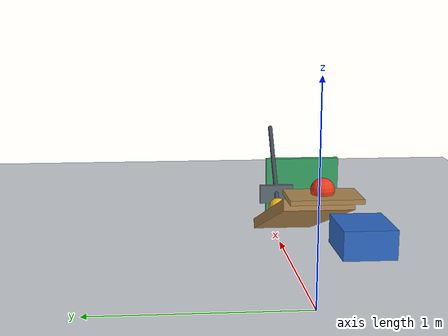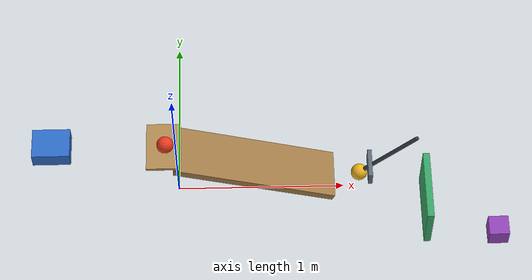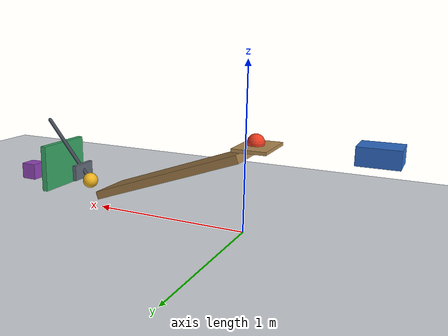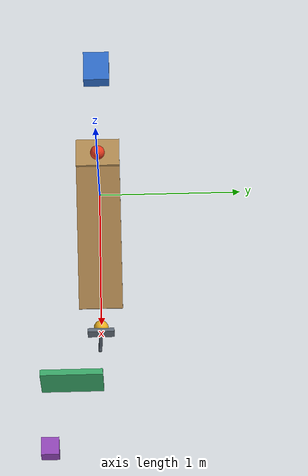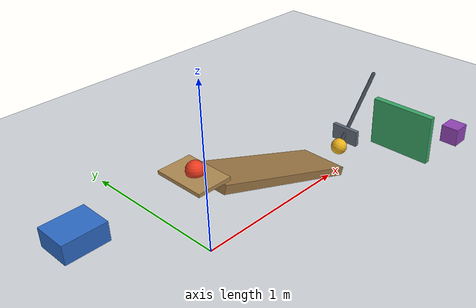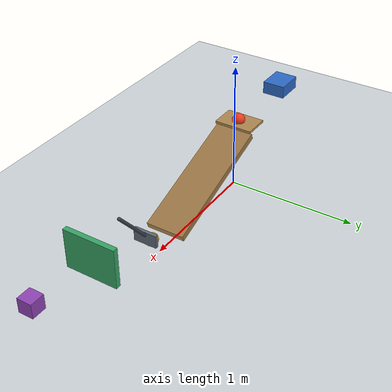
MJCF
<mujoco model="spring_cart_ramp_pendulum_door">
  <compiler angle="degree" autolimits="true"/>
  <option timestep="0.002" gravity="0 0 -9.81" integrator="implicitfast" solver="Newton" iterations="100" tolerance="1e-10"/>
  <size njmax="2000" nconmax="400"/>
  <statistic center="0.8 0 0.35" extent="2.8"/>

  <visual>
    <headlight ambient="0.45 0.45 0.45" diffuse="0.7 0.7 0.7" specular="0.2 0.2 0.2"/>
    <rgba haze="0.85 0.90 0.95 1"/>
    <global azimuth="135" elevation="-25"/>
  </visual>

  <worldbody>
    <light name="scene_light" pos="0 -2 4" dir="0 0 -1" directional="true"/>
    <camera name="overview" pos="3 -4 2.4" xyaxes="0.8 0.6 0 -0.24 0.32 0.9165"/>
    <geom name="floor" type="plane" pos="0 0 0" size="5 4 0.1" friction="0.68 0.005 0.002" condim="6" solref="0.008 0.6901" solimp="0.95 0.99 0.001" rgba="0.82 0.84 0.86 1"/>

    <!-- The cart's front face begins exactly 0.50 m from the ball's rear surface. -->
    <body name="cart1" pos="-0.72 0 0.542020143">
      <joint name="cart1_slide" type="slide" axis="1 0 0" damping="0.20" limited="true" range="0 0.67" solreflimit="0.004 1" solimplimit="0.95 0.99 0.001"/>
      <geom name="cart1_box" type="box" size="0.11 0.09 0.05" mass="0.50" friction="0.68 0.005 0.0001" condim="6" solref="0.008 0.6901" solimp="0.95 0.99 0.001" rgba="0.18 0.42 0.78 1"/>
    </body>

    <!-- A level launch perch prevents premature gravity-driven departure. -->
    <body name="ball1" pos="-0.06 0 0.542020143">
      <freejoint name="ball1_free"/>
      <geom name="ball1_sphere" type="sphere" size="0.05" mass="0.20" friction="0.68 0.005 0.0001" condim="6" solref="0.008 0.6901" solimp="0.95 0.99 0.001" rgba="0.92 0.23 0.12 1"/>
    </body>

    <!-- Main ramp: 1.00 m surface length, 0.30 m width, 20 degrees.
         Surface endpoints: (0,0,0.492020143) and (0.939692621,0,0.15). -->
    <body name="ramp1" pos="0.469846310 0 0.321010072" quat="0.984807753 0 0.173648178 0">
      <geom name="ramp1_slope" type="box" pos="0 0 -0.025" size="0.50 0.15 0.025" friction="0.68 0.005 0.0001" condim="6" solref="0.008 0.6901" solimp="0.95 0.99 0.001" rgba="0.63 0.48 0.28 1"/>
      <geom name="ramp1_launch_perch" type="box" pos="-0.574567111 0 -0.000829226" quat="0.984807753 0 -0.173648178 0" size="0.10 0.15 0.01" friction="0.68 0.005 0.0001" condim="6" solref="0.008 0.6901" solimp="0.95 0.99 0.001" rgba="0.69 0.54 0.32 1"/>
    </body>

    <body name="pendulum1" pos="1.411086426 0 0.553022222" quat="0.939692621 0 0.342020143 0">
      <joint name="pendulum1_hinge" type="hinge" axis="0 -1 0" damping="0.04" limited="true" range="0 105" solreflimit="0.004 1" solimplimit="0.95 0.99 0.001"/>
      <geom name="pendulum1_rod" type="capsule" fromto="0 0 0 0 0 -0.50" size="0.012" mass="0.03" friction="0.68 0.005 0.0001" condim="6" solref="0.008 0.6901" solimp="0.95 0.99 0.001" rgba="0.25 0.28 0.32 1"/>
      <geom name="pendulum1_bob" type="sphere" pos="0 0 -0.50" size="0.05" mass="0.32" friction="0.68 0.005 0.0001" condim="6" solref="0.008 0.6901" solimp="0.95 0.99 0.001" rgba="0.93 0.70 0.12 1"/>
    </body>

    <body name="pendulum1_catch" pos="1.151182416 0 0.23">
      <joint name="pendulum1_catch_slide" type="slide" axis="1 0 0" damping="0.20" stiffness="250" springref="-0.0133" limited="true" range="-0.02 0.08" solreflimit="0.004 1" solimplimit="0.95 0.99 0.001"/>
      <geom name="pendulum1_catch_box" type="box" size="0.0125 0.09 0.05" mass="0.035" friction="0.68 0.005 0.0001" condim="6" solref="0.008 0.6901" solimp="0.95 0.99 0.001" rgba="0.38 0.42 0.47 1"/>
    </body>

    <body name="door1" pos="1.481086426 -0.41 0.20">
      <joint name="door1_hinge" type="hinge" axis="0 0 -1" damping="0.04" limited="true" range="0 70" solreflimit="0.004 1" solimplimit="0.95 0.99 0.001"/>
      <geom name="door1_panel" type="box" pos="0 0.21 0" size="0.02 0.21 0.16" mass="0.45" friction="0.68 0.005 0.0001" condim="6" solref="0.008 0.6901" solimp="0.95 0.99 0.001" rgba="0.22 0.65 0.40 1"/>
    </body>

    <!-- Contact begins just before the 70-degree hard stop. -->
    <body name="block1" pos="1.908709366 -0.353903602 0.06">
      <freejoint name="block1_free"/>
      <geom name="block1_box" type="box" size="0.06 0.06 0.06" mass="0.35" friction="0.68 0.005 0.0001" condim="6" solref="0.008 0.6901" solimp="0.95 0.99 0.001" rgba="0.57 0.27 0.72 1"/>
    </body>
  </worldbody>

  <contact>
    <!-- The slide joint supplies the cart's guide; the launch perch does not
         introduce an additional friction brake beneath the constrained cart. -->
    <exclude name="cart1_ramp1_exclusion" body1="cart1" body2="ramp1"/>
  </contact>

  <tendon>
    <fixed name="cart1_axial_spring" stiffness="18" damping="0" springlength="0.20 10">
      <joint joint="cart1_slide" coef="1"/>
    </fixed>
  </tendon>

  <keyframe>
    <key name="start" time="0" qpos="0 -0.06 0 0.542020143 1 0 0 0 0 0 0 1.908709366 -0.353903602 0.06 1 0 0 0" qvel="0 0 0 0 0 0 0 0 0 0 0 0 0 0 0 0"/>
  </keyframe>
</mujoco>
